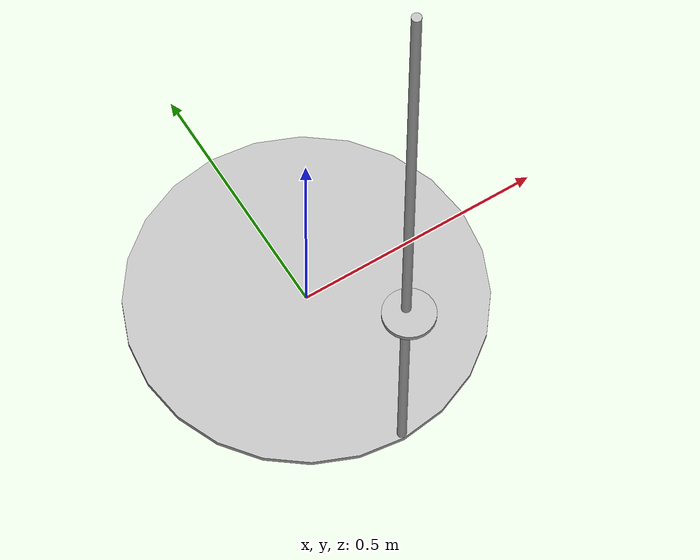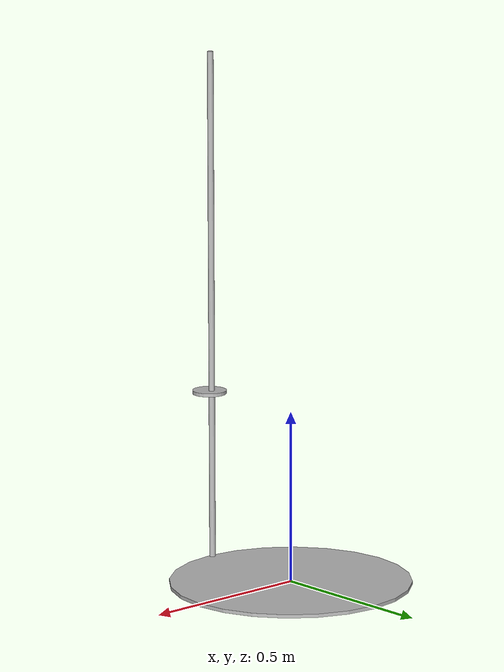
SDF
<?xml version='1.0'?>
<sdf version='1.5'>
  <model name="oblique_cone">

    <link name='cone'>
      <pose>0 0 0 0 0 0</pose>
      <inertial>
        <mass>0.1</mass>
      </inertial>

      <collision name='base_collision'>
         <geometry>
           <cylinder>
             <radius>0.35</radius>
             <length>0.01</length>
           </cylinder>
         </geometry>
         <surface>
           <friction>
             <ode>
               <mu>1</mu>
               <mu2>1</mu2>
             </ode>
           </friction>
         </surface>
      </collision>

      <visual name='base_visual'>
         <geometry>
           <cylinder>
             <radius>0.35</radius>
             <length>0.01</length>
           </cylinder>
         </geometry>
      </visual>

      <collision name='rod_collision'>
         <pose>0 -0.34 0.75 0 0 0</pose>
         <geometry>
           <cylinder>
             <radius>0.009</radius>
             <length>1.5</length>
           </cylinder>
         </geometry>
      </collision>

      <visual name='rod_visual'>
         <pose>0 -0.34 0.75 0 0 0</pose>
         <geometry>
           <cylinder>
             <radius>0.009</radius>
             <length>1.5</length>
           </cylinder>
         </geometry>
      </visual>

      <sensor name="cone_imu" type="imu">
        <always_on>true</always_on>
        <update_rate>10.0</update_rate>
        <visualize>true</visualize>
        <plugin filename="libgazebo_ros_imu_sensor.so" name="imu_plugin">
          <topicName>imu</topicName>
          <bodyName>cone</bodyName>
          <updateRateHZ>5.0</updateRateHZ>
          <gaussianNoise>0.0</gaussianNoise>
          <xyzOffset>0 0 0</xyzOffset>
          <rpyOffset>0 0 0</rpyOffset>
          <frameName>cone</frameName>
        </plugin>
      </sensor>

      <sensor name="contact_sensor" type="contact">
        <always_on>true</always_on>
        <update_rate>10.0</update_rate>
        <contact>
          <collision>base_collision</collision>
        </contact>
        <plugin filename="libgazebo_ros_bumper.so" name="bumper_plugin">
          <robotNamespace>oblique_cone</robotNamespace>
          <updateRateHZ>10.0</updateRateHZ>
          <bumperTopicName>bumper</bumperTopicName>
          <frameName>world</frameName>
        </plugin>
      </sensor>

    </link>

    <link name="mass">
      <pose>0 -0.35 0.5 0 0 0</pose>
      <inertial>
        <mass>1</mass>
      </inertial>

      <collision name='mass_collision'>
         <geometry>
           <cylinder>
             <radius>0.05</radius>
             <length>0.01</length>
           </cylinder>
         </geometry>
      </collision>

      <visual name='mass_visual'>
         <geometry>
           <cylinder>
             <radius>0.05</radius>
             <length>0.01</length>
           </cylinder>
         </geometry>
      </visual>

    </link>

    <joint type="fixed" name="mass_joint">
      <parent>cone</parent>
      <child>mass</child>
    </joint>

  </model>
</sdf>
